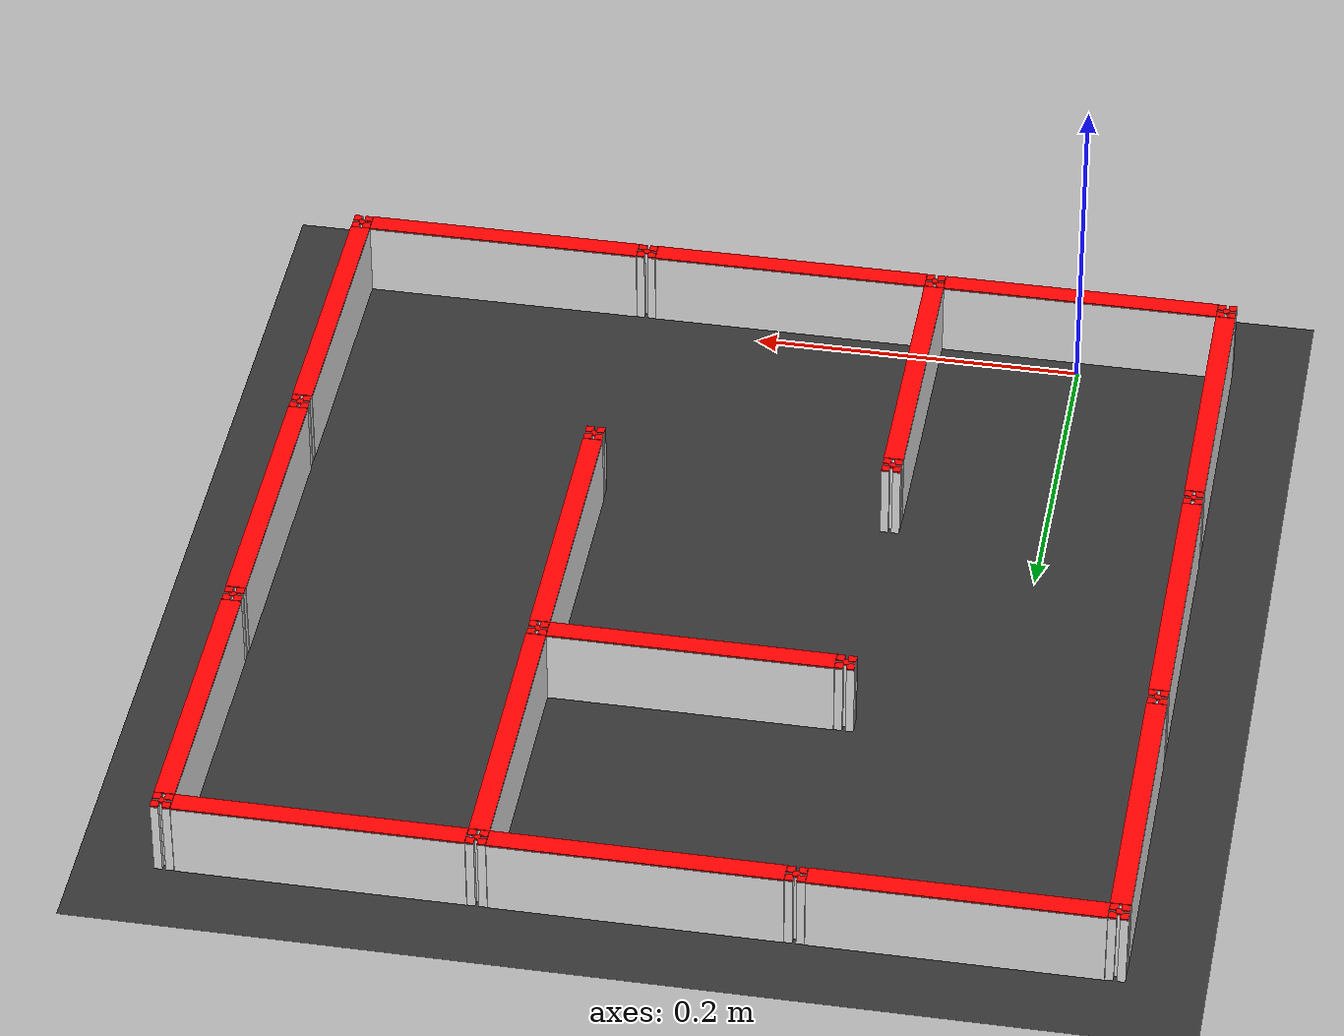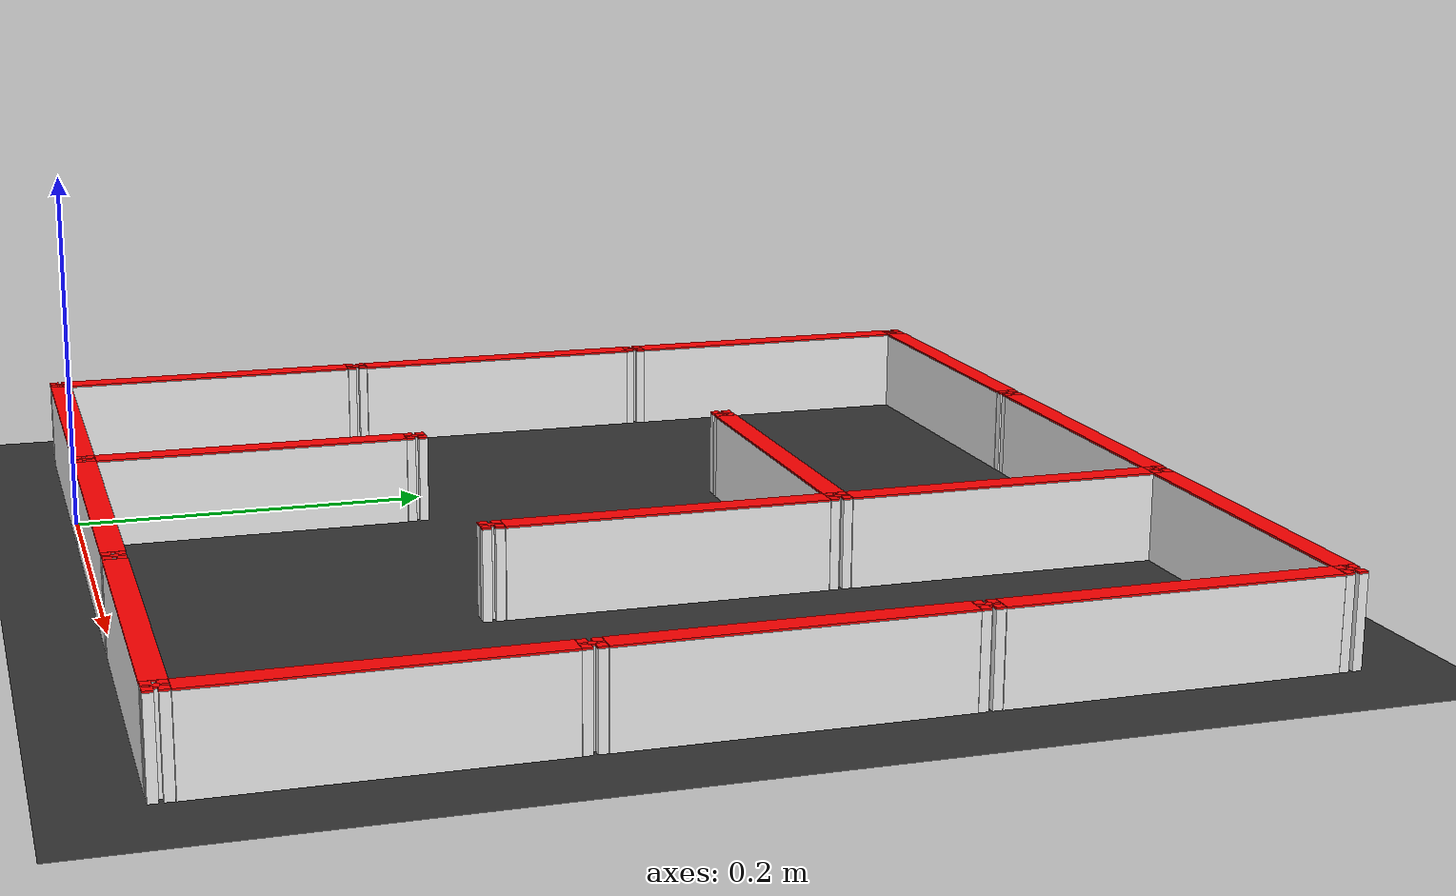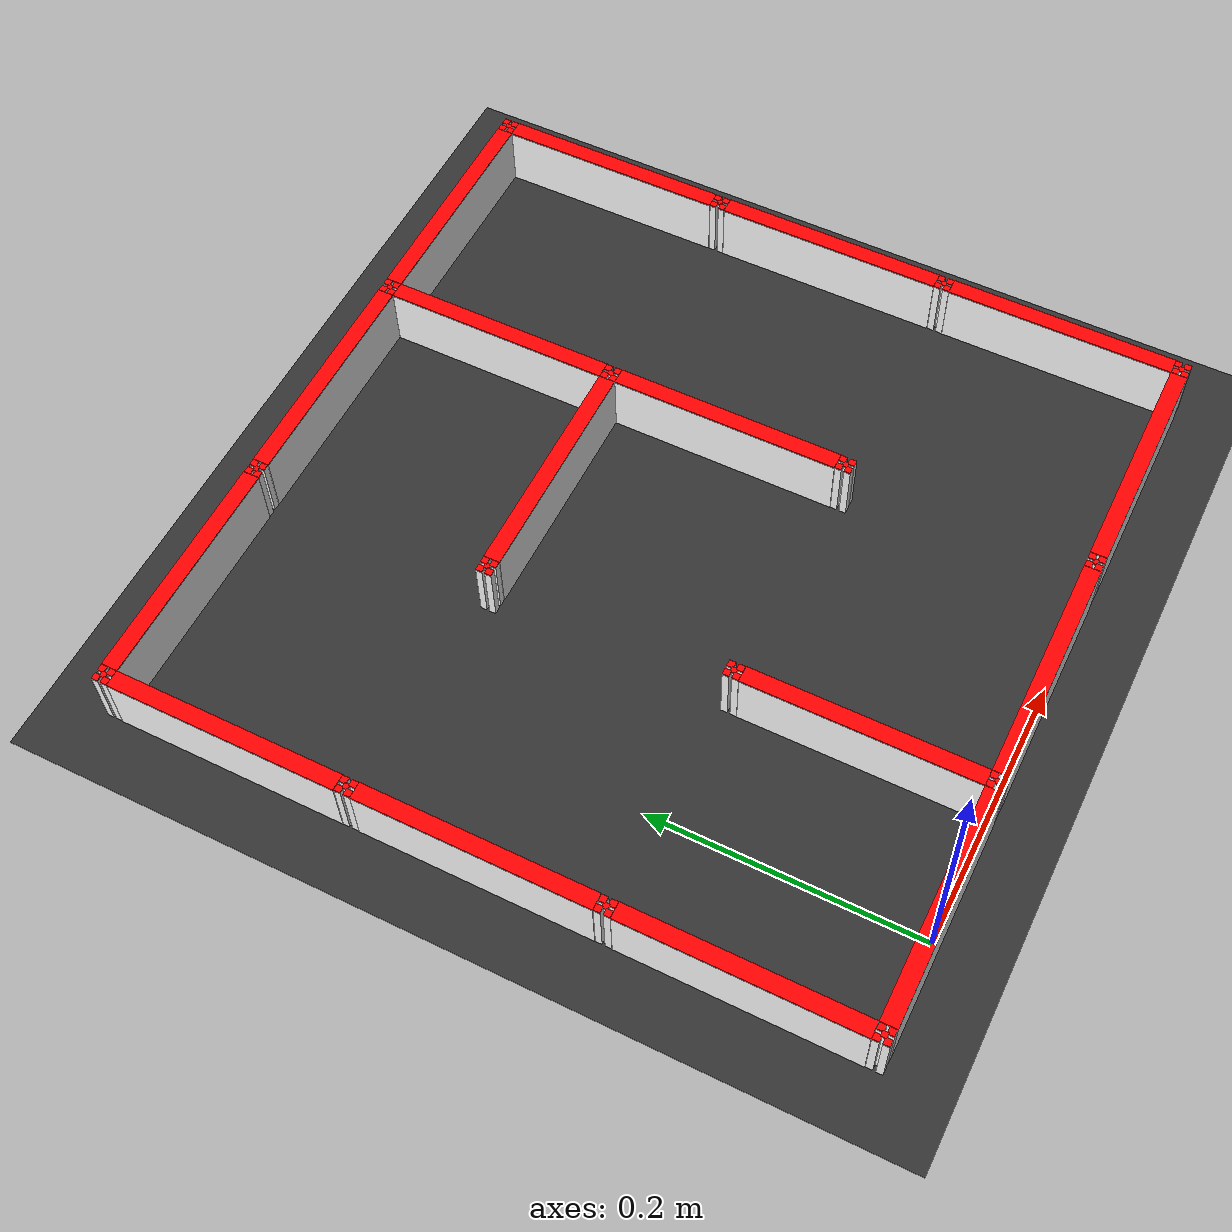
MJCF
<mujoco model="maze">

    <asset>
        <texture type="skybox" builtin="gradient" rgb1="0.3 0.5 0.7" rgb2="0 0 0" width="512" height="3072"/>
        <texture type="2d" name="groundplane" builtin="checker" mark="edge" rgb1="0.2 0.3 0.4" rgb2="0.1 0.2 0.3" markrgb="0.8 0.8 0.8" width="300" height="300"/>
        <material name="groundplane" texture="groundplane" texuniform="true" texrepeat="5 5" reflectance="0.2"/>
    </asset>

    <worldbody>
        <!--ベース板-->
        <body name="base_plate" pos="0.18 0.27 0.015">
            <geom type="plane" mass="0.1" size="0.321 0.321 0.006" rgba="0.2 0.2 0.2 1" friction="0.0 0.0 0.0"/>
        </body>
        <body name="wall1" pos="0 0 0.037"  euler="0 0 0">
            <body pos="0 0 -0.0005">
                <geom type="box" mass="0.1" size="0.084 0.006 0.0245" rgba="1 1 1 1"/>
            </body>
            <body pos="0 0 0.0245">
                <geom type="box" mass="0.001" size="0.084 0.006 0.0005" rgba="1 0 0 1"/>
            </body>
        </body>
        <body name="wall2" pos="0.18 0 0.037" euler="0 0 0">
            <body pos="0 0 -0.0005">
                <geom type="box" mass="0.1" size="0.084 0.006 0.0245" rgba="1 1 1 1"/>
            </body>
            <body pos="0 0 0.0245">
                <geom type="box" mass="0.001" size="0.084 0.006 0.0005" rgba="1 0 0 1"/>
            </body>
        </body>
        <body name="wall3" pos="0.36 0 0.037" euler="0 0 0">
            <body pos="0 0 -0.0005">
                <geom type="box" mass="0.1" size="0.084 0.006 0.0245" rgba="1 1 1 1"/>
            </body>
            <body pos="0 0 0.0245">
                <geom type="box" mass="0.001" size="0.084 0.006 0.0005" rgba="1 0 0 1"/>
            </body>
        </body>
        <body name="wall4" pos="0.45 0.09 0.037"  euler="0 0 90">
            <body pos="0 0 -0.0005">
                <geom type="box" mass="0.1" size="0.084 0.006 0.0245" rgba="1 1 1 1"/>
            </body>
            <body pos="0 0 0.0245">
                <geom type="box" mass="0.001" size="0.084 0.006 0.0005" rgba="1 0 0 1"/>
            </body>
        </body>
        <body name="wall5" pos="0.45 0.27 0.037" euler="0 0 90">
            <body pos="0 0 -0.0005">
                <geom type="box" mass="0.1" size="0.084 0.006 0.0245" rgba="1 1 1 1"/>
            </body>
            <body pos="0 0 0.0245">
                <geom type="box" mass="0.001" size="0.084 0.006 0.0005" rgba="1 0 0 1"/>
            </body>
        </body>
        <body name="wall6" pos="0.45 0.45 0.037" euler="0 0 90">
            <body pos="0 0 -0.0005">
                <geom type="box" mass="0.1" size="0.084 0.006 0.0245" rgba="1 1 1 1"/>
            </body>
            <body pos="0 0 0.0245">
                <geom type="box" mass="0.001" size="0.084 0.006 0.0005" rgba="1 0 0 1"/>
            </body>
        </body>
        <body name="wall7" pos="-0.090 0.09 0.037"  euler="0 0 90">
            <body pos="0 0 -0.0005">
                <geom type="box" mass="0.1" size="0.084 0.006 0.0245" rgba="1 1 1 1"/>
            </body>
            <body pos="0 0 0.0245">
                <geom type="box" mass="0.001" size="0.084 0.006 0.0005" rgba="1 0 0 1"/>
            </body>
        </body>
        <body name="wall8" pos="-0.090 0.27 0.037" euler="0 0 90">
            <body pos="0 0 -0.0005">
                <geom type="box" mass="0.1" size="0.084 0.006 0.0245" rgba="1 1 1 1"/>
            </body>
            <body pos="0 0 0.0245">
                <geom type="box" mass="0.001" size="0.084 0.006 0.0005" rgba="1 0 0 1"/>
            </body>
        </body>
        <body name="wall9" pos="-0.090 0.45 0.037" euler="0 0 90">
            <body pos="0 0 -0.0005">
                <geom type="box" mass="0.1" size="0.084 0.006 0.0245" rgba="1 1 1 1"/>
            </body>
            <body pos="0 0 0.0245">
                <geom type="box" mass="0.001" size="0.084 0.006 0.0005" rgba="1 0 0 1"/>
            </body>
        </body>
        <body name="wall10" pos="0 0.54 0.037"  euler="0 0 0">
            <body pos="0 0 -0.0005">
                <geom type="box" mass="0.1" size="0.084 0.006 0.0245" rgba="1 1 1 1"/>
            </body>
            <body pos="0 0 0.0245">
                <geom type="box" mass="0.001" size="0.084 0.006 0.0005" rgba="1 0 0 1"/>
            </body>
        </body>
        <body name="wall11" pos="0.18 0.54 0.037" euler="0 0 0">
            <body pos="0 0 -0.0005">
                <geom type="box" mass="0.1" size="0.084 0.006 0.0245" rgba="1 1 1 1"/>
            </body>
            <body pos="0 0 0.0245">
                <geom type="box" mass="0.001" size="0.084 0.006 0.0005" rgba="1 0 0 1"/>
            </body>
        </body>
        <body name="wall12" pos="0.36 0.54 0.037" euler="0 0 0">
            <body pos="0 0 -0.0005">
                <geom type="box" mass="0.1" size="0.084 0.006 0.0245" rgba="1 1 1 1"/>
            </body>
            <body pos="0 0 0.0245">
                <geom type="box" mass="0.001" size="0.084 0.006 0.0005" rgba="1 0 0 1"/>
            </body>
        </body>

        <body name="wall13" pos="0.09 0.09 0.037" euler="0 0 90">
            <body pos="0 0 -0.0005">
                <geom type="box" mass="0.1" size="0.084 0.006 0.0245" rgba="1 1 1 1"/>
            </body>
            <body pos="0 0 0.0245">
                <geom type="box" mass="0.001" size="0.084 0.006 0.0005" rgba="1 0 0 1"/>
            </body>
        </body>

        <body name="wall14" pos="0.27 0.45 0.037" euler="0 0 90">
            <body pos="0 0 -0.0005">
                <geom type="box" mass="0.1" size="0.084 0.006 0.0245" rgba="1 1 1 1"/>
            </body>
            <body pos="0 0 0.0245">
                <geom type="box" mass="0.001" size="0.084 0.006 0.0005" rgba="1 0 0 1"/>
            </body>
        </body>

        <body name="wall15" pos="0.18 0.36 0.037" euler="0 0 0">
            <body pos="0 0 -0.0005">
                <geom type="box" mass="0.1" size="0.084 0.006 0.0245" rgba="1 1 1 1"/>
            </body>
            <body pos="0 0 0.0245">
                <geom type="box" mass="0.001" size="0.084 0.006 0.0005" rgba="1 0 0 1"/>
            </body>
        </body>

        <body name="wall16" pos="0.27 0.27 0.037" euler="0 0 90">
            <body pos="0 0 -0.0005">
                <geom type="box" mass="0.1" size="0.084 0.006 0.0245" rgba="1 1 1 1"/>
            </body>
            <body pos="0 0 0.0245">
                <geom type="box" mass="0.001" size="0.084 0.006 0.0005" rgba="1 0 0 1"/>
            </body>
        </body>

        <body pos="-0.09 0 0.037">
            <body pos="0.003375 0.003375 -0.0005">
                <geom type="box" mass="0.01" size="0.002375 0.002375 0.0245" rgba="1 1 1 1"/>
            </body>
            <body pos="0.003375 -0.003375 -0.0005">
                <geom type="box" mass="0.01" size="0.002375 0.002375 0.0245" rgba="1 1 1 1"/>
            </body>
            <body pos="-0.003375 0.003375 -0.0005">
                <geom type="box" mass="0.01" size="0.002375 0.002375 0.0245" rgba="1 1 1 1"/>
            </body>
            <body pos="-0.003375 -0.003375 -0.0005">
                <geom type="box" mass="0.01" size="0.002375 0.002375 0.0245" rgba="1 1 1 1"/>
            </body>
            <body pos="0 0 -0.0005">
                <geom type="box" mass="0.01" size="0.002 0.002 0.0245" rgba="1 1 1 1"/>
            </body>
            <!--柱上赤蓋-->
            <body pos="0.003375 0.003375 0.0245">
                <geom type="box" mass="0.01" size="0.002375 0.002375 0.0005" rgba="1 0 0 1"/>
            </body>
            <body pos="0.003375 -0.003375 0.0245">
                <geom type="box" mass="0.01" size="0.002375 0.002375 0.0005" rgba="1 0 0 1"/>
            </body>
            <body pos="-0.003375 0.003375 0.0245">
                <geom type="box" mass="0.01" size="0.002375 0.002375 0.0005" rgba="1 0 0 1"/>
            </body>
            <body pos="-0.003375 -0.003375 0.0245">
                <geom type="box" mass="0.01" size="0.002375 0.002375 0.0005" rgba="1 0 0 1"/>
            </body>
            <body pos="0 0 0.0245">
                <geom type="box" mass="0.01" size="0.002 0.002 0.0005" rgba="1 0 0 1"/>
            </body>
        </body>
        <body pos="0.09 0 0.037">
            <body pos="0.003375 0.003375 -0.0005">
                <geom type="box" mass="0.01" size="0.002375 0.002375 0.0245" rgba="1 1 1 1"/>
            </body>
            <body pos="0.003375 -0.003375 -0.0005">
                <geom type="box" mass="0.01" size="0.002375 0.002375 0.0245" rgba="1 1 1 1"/>
            </body>
            <body pos="-0.003375 0.003375 -0.0005">
                <geom type="box" mass="0.01" size="0.002375 0.002375 0.0245" rgba="1 1 1 1"/>
            </body>
            <body pos="-0.003375 -0.003375 -0.0005">
                <geom type="box" mass="0.01" size="0.002375 0.002375 0.0245" rgba="1 1 1 1"/>
            </body>
            <body pos="0 0 -0.0005">
                <geom type="box" mass="0.01" size="0.002 0.002 0.0245" rgba="1 1 1 1"/>
            </body>
            <!--柱上赤蓋-->
            <body pos="0.003375 0.003375 0.0245">
                <geom type="box" mass="0.01" size="0.002375 0.002375 0.0005" rgba="1 0 0 1"/>
            </body>
            <body pos="0.003375 -0.003375 0.0245">
                <geom type="box" mass="0.01" size="0.002375 0.002375 0.0005" rgba="1 0 0 1"/>
            </body>
            <body pos="-0.003375 0.003375 0.0245">
                <geom type="box" mass="0.01" size="0.002375 0.002375 0.0005" rgba="1 0 0 1"/>
            </body>
            <body pos="-0.003375 -0.003375 0.0245">
                <geom type="box" mass="0.01" size="0.002375 0.002375 0.0005" rgba="1 0 0 1"/>
            </body>
            <body pos="0 0 0.0245">
                <geom type="box" mass="0.01" size="0.002 0.002 0.0005" rgba="1 0 0 1"/>
            </body>
        </body>
        <body pos="0.27 0 0.037">
            <body pos="0.003375 0.003375 -0.0005">
                <geom type="box" mass="0.01" size="0.002375 0.002375 0.0245" rgba="1 1 1 1"/>
            </body>
            <body pos="0.003375 -0.003375 -0.0005">
                <geom type="box" mass="0.01" size="0.002375 0.002375 0.0245" rgba="1 1 1 1"/>
            </body>
            <body pos="-0.003375 0.003375 -0.0005">
                <geom type="box" mass="0.01" size="0.002375 0.002375 0.0245" rgba="1 1 1 1"/>
            </body>
            <body pos="-0.003375 -0.003375 -0.0005">
                <geom type="box" mass="0.01" size="0.002375 0.002375 0.0245" rgba="1 1 1 1"/>
            </body>
            <body pos="0 0 -0.0005">
                <geom type="box" mass="0.01" size="0.002 0.002 0.0245" rgba="1 1 1 1"/>
            </body>
            <!--柱上赤蓋-->
            <body pos="0.003375 0.003375 0.0245">
                <geom type="box" mass="0.01" size="0.002375 0.002375 0.0005" rgba="1 0 0 1"/>
            </body>
            <body pos="0.003375 -0.003375 0.0245">
                <geom type="box" mass="0.01" size="0.002375 0.002375 0.0005" rgba="1 0 0 1"/>
            </body>
            <body pos="-0.003375 0.003375 0.0245">
                <geom type="box" mass="0.01" size="0.002375 0.002375 0.0005" rgba="1 0 0 1"/>
            </body>
            <body pos="-0.003375 -0.003375 0.0245">
                <geom type="box" mass="0.01" size="0.002375 0.002375 0.0005" rgba="1 0 0 1"/>
            </body>
            <body pos="0 0 0.0245">
                <geom type="box" mass="0.01" size="0.002 0.002 0.0005" rgba="1 0 0 1"/>
            </body>
        </body>
        <body pos="0.45 0 0.037">
            <body pos="0.003375 0.003375 -0.0005">
                <geom type="box" mass="0.01" size="0.002375 0.002375 0.0245" rgba="1 1 1 1"/>
            </body>
            <body pos="0.003375 -0.003375 -0.0005">
                <geom type="box" mass="0.01" size="0.002375 0.002375 0.0245" rgba="1 1 1 1"/>
            </body>
            <body pos="-0.003375 0.003375 -0.0005">
                <geom type="box" mass="0.01" size="0.002375 0.002375 0.0245" rgba="1 1 1 1"/>
            </body>
            <body pos="-0.003375 -0.003375 -0.0005">
                <geom type="box" mass="0.01" size="0.002375 0.002375 0.0245" rgba="1 1 1 1"/>
            </body>
            <body pos="0 0 -0.0005">
                <geom type="box" mass="0.01" size="0.002 0.002 0.0245" rgba="1 1 1 1"/>
            </body>
            <!--柱上赤蓋-->
            <body pos="0.003375 0.003375 0.0245">
                <geom type="box" mass="0.01" size="0.002375 0.002375 0.0005" rgba="1 0 0 1"/>
            </body>
            <body pos="0.003375 -0.003375 0.0245">
                <geom type="box" mass="0.01" size="0.002375 0.002375 0.0005" rgba="1 0 0 1"/>
            </body>
            <body pos="-0.003375 0.003375 0.0245">
                <geom type="box" mass="0.01" size="0.002375 0.002375 0.0005" rgba="1 0 0 1"/>
            </body>
            <body pos="-0.003375 -0.003375 0.0245">
                <geom type="box" mass="0.01" size="0.002375 0.002375 0.0005" rgba="1 0 0 1"/>
            </body>
            <body pos="0 0 0.0245">
                <geom type="box" mass="0.01" size="0.002 0.002 0.0005" rgba="1 0 0 1"/>
            </body>
        </body>

        <body pos="-0.09 0.18 0.037">
            <body pos="0.003375 0.003375 -0.0005">
                <geom type="box" mass="0.01" size="0.002375 0.002375 0.0245" rgba="1 1 1 1"/>
            </body>
            <body pos="0.003375 -0.003375 -0.0005">
                <geom type="box" mass="0.01" size="0.002375 0.002375 0.0245" rgba="1 1 1 1"/>
            </body>
            <body pos="-0.003375 0.003375 -0.0005">
                <geom type="box" mass="0.01" size="0.002375 0.002375 0.0245" rgba="1 1 1 1"/>
            </body>
            <body pos="-0.003375 -0.003375 -0.0005">
                <geom type="box" mass="0.01" size="0.002375 0.002375 0.0245" rgba="1 1 1 1"/>
            </body>
            <body pos="0 0 -0.0005">
                <geom type="box" mass="0.01" size="0.002 0.002 0.0245" rgba="1 1 1 1"/>
            </body>
            <!--柱上赤蓋-->
            <body pos="0.003375 0.003375 0.0245">
                <geom type="box" mass="0.01" size="0.002375 0.002375 0.0005" rgba="1 0 0 1"/>
            </body>
            <body pos="0.003375 -0.003375 0.0245">
                <geom type="box" mass="0.01" size="0.002375 0.002375 0.0005" rgba="1 0 0 1"/>
            </body>
            <body pos="-0.003375 0.003375 0.0245">
                <geom type="box" mass="0.01" size="0.002375 0.002375 0.0005" rgba="1 0 0 1"/>
            </body>
            <body pos="-0.003375 -0.003375 0.0245">
                <geom type="box" mass="0.01" size="0.002375 0.002375 0.0005" rgba="1 0 0 1"/>
            </body>
            <body pos="0 0 0.0245">
                <geom type="box" mass="0.01" size="0.002 0.002 0.0005" rgba="1 0 0 1"/>
            </body>
        </body>
        <body pos="0.09 0.18 0.037">
            <body pos="0.003375 0.003375 -0.0005">
                <geom type="box" mass="0.01" size="0.002375 0.002375 0.0245" rgba="1 1 1 1"/>
            </body>
            <body pos="0.003375 -0.003375 -0.0005">
                <geom type="box" mass="0.01" size="0.002375 0.002375 0.0245" rgba="1 1 1 1"/>
            </body>
            <body pos="-0.003375 0.003375 -0.0005">
                <geom type="box" mass="0.01" size="0.002375 0.002375 0.0245" rgba="1 1 1 1"/>
            </body>
            <body pos="-0.003375 -0.003375 -0.0005">
                <geom type="box" mass="0.01" size="0.002375 0.002375 0.0245" rgba="1 1 1 1"/>
            </body>
            <body pos="0 0 -0.0005">
                <geom type="box" mass="0.01" size="0.002 0.002 0.0245" rgba="1 1 1 1"/>
            </body>
            <!--柱上赤蓋-->
            <body pos="0.003375 0.003375 0.0245">
                <geom type="box" mass="0.01" size="0.002375 0.002375 0.0005" rgba="1 0 0 1"/>
            </body>
            <body pos="0.003375 -0.003375 0.0245">
                <geom type="box" mass="0.01" size="0.002375 0.002375 0.0005" rgba="1 0 0 1"/>
            </body>
            <body pos="-0.003375 0.003375 0.0245">
                <geom type="box" mass="0.01" size="0.002375 0.002375 0.0005" rgba="1 0 0 1"/>
            </body>
            <body pos="-0.003375 -0.003375 0.0245">
                <geom type="box" mass="0.01" size="0.002375 0.002375 0.0005" rgba="1 0 0 1"/>
            </body>
            <body pos="0 0 0.0245">
                <geom type="box" mass="0.01" size="0.002 0.002 0.0005" rgba="1 0 0 1"/>
            </body>
        </body>
        <body pos="0.27 0.18 0.037">
            <body pos="0.003375 0.003375 -0.0005">
                <geom type="box" mass="0.01" size="0.002375 0.002375 0.0245" rgba="1 1 1 1"/>
            </body>
            <body pos="0.003375 -0.003375 -0.0005">
                <geom type="box" mass="0.01" size="0.002375 0.002375 0.0245" rgba="1 1 1 1"/>
            </body>
            <body pos="-0.003375 0.003375 -0.0005">
                <geom type="box" mass="0.01" size="0.002375 0.002375 0.0245" rgba="1 1 1 1"/>
            </body>
            <body pos="-0.003375 -0.003375 -0.0005">
                <geom type="box" mass="0.01" size="0.002375 0.002375 0.0245" rgba="1 1 1 1"/>
            </body>
            <body pos="0 0 -0.0005">
                <geom type="box" mass="0.01" size="0.002 0.002 0.0245" rgba="1 1 1 1"/>
            </body>
            <!--柱上赤蓋-->
            <body pos="0.003375 0.003375 0.0245">
                <geom type="box" mass="0.01" size="0.002375 0.002375 0.0005" rgba="1 0 0 1"/>
            </body>
            <body pos="0.003375 -0.003375 0.0245">
                <geom type="box" mass="0.01" size="0.002375 0.002375 0.0005" rgba="1 0 0 1"/>
            </body>
            <body pos="-0.003375 0.003375 0.0245">
                <geom type="box" mass="0.01" size="0.002375 0.002375 0.0005" rgba="1 0 0 1"/>
            </body>
            <body pos="-0.003375 -0.003375 0.0245">
                <geom type="box" mass="0.01" size="0.002375 0.002375 0.0005" rgba="1 0 0 1"/>
            </body>
            <body pos="0 0 0.0245">
                <geom type="box" mass="0.01" size="0.002 0.002 0.0005" rgba="1 0 0 1"/>
            </body>
        </body>
        <body pos="0.45 0.18 0.037">
            <body pos="0.003375 0.003375 -0.0005">
                <geom type="box" mass="0.01" size="0.002375 0.002375 0.0245" rgba="1 1 1 1"/>
            </body>
            <body pos="0.003375 -0.003375 -0.0005">
                <geom type="box" mass="0.01" size="0.002375 0.002375 0.0245" rgba="1 1 1 1"/>
            </body>
            <body pos="-0.003375 0.003375 -0.0005">
                <geom type="box" mass="0.01" size="0.002375 0.002375 0.0245" rgba="1 1 1 1"/>
            </body>
            <body pos="-0.003375 -0.003375 -0.0005">
                <geom type="box" mass="0.01" size="0.002375 0.002375 0.0245" rgba="1 1 1 1"/>
            </body>
            <body pos="0 0 -0.0005">
                <geom type="box" mass="0.01" size="0.002 0.002 0.0245" rgba="1 1 1 1"/>
            </body>
            <!--柱上赤蓋-->
            <body pos="0.003375 0.003375 0.0245">
                <geom type="box" mass="0.01" size="0.002375 0.002375 0.0005" rgba="1 0 0 1"/>
            </body>
            <body pos="0.003375 -0.003375 0.0245">
                <geom type="box" mass="0.01" size="0.002375 0.002375 0.0005" rgba="1 0 0 1"/>
            </body>
            <body pos="-0.003375 0.003375 0.0245">
                <geom type="box" mass="0.01" size="0.002375 0.002375 0.0005" rgba="1 0 0 1"/>
            </body>
            <body pos="-0.003375 -0.003375 0.0245">
                <geom type="box" mass="0.01" size="0.002375 0.002375 0.0005" rgba="1 0 0 1"/>
            </body>
            <body pos="0 0 0.0245">
                <geom type="box" mass="0.01" size="0.002 0.002 0.0005" rgba="1 0 0 1"/>
            </body>
        </body>

        <body pos="-0.09 0.36 0.037">
            <body pos="0.003375 0.003375 -0.0005">
                <geom type="box" mass="0.01" size="0.002375 0.002375 0.0245" rgba="1 1 1 1"/>
            </body>
            <body pos="0.003375 -0.003375 -0.0005">
                <geom type="box" mass="0.01" size="0.002375 0.002375 0.0245" rgba="1 1 1 1"/>
            </body>
            <body pos="-0.003375 0.003375 -0.0005">
                <geom type="box" mass="0.01" size="0.002375 0.002375 0.0245" rgba="1 1 1 1"/>
            </body>
            <body pos="-0.003375 -0.003375 -0.0005">
                <geom type="box" mass="0.01" size="0.002375 0.002375 0.0245" rgba="1 1 1 1"/>
            </body>
            <body pos="0 0 -0.0005">
                <geom type="box" mass="0.01" size="0.002 0.002 0.0245" rgba="1 1 1 1"/>
            </body>
            <!--柱上赤蓋-->
            <body pos="0.003375 0.003375 0.0245">
                <geom type="box" mass="0.01" size="0.002375 0.002375 0.0005" rgba="1 0 0 1"/>
            </body>
            <body pos="0.003375 -0.003375 0.0245">
                <geom type="box" mass="0.01" size="0.002375 0.002375 0.0005" rgba="1 0 0 1"/>
            </body>
            <body pos="-0.003375 0.003375 0.0245">
                <geom type="box" mass="0.01" size="0.002375 0.002375 0.0005" rgba="1 0 0 1"/>
            </body>
            <body pos="-0.003375 -0.003375 0.0245">
                <geom type="box" mass="0.01" size="0.002375 0.002375 0.0005" rgba="1 0 0 1"/>
            </body>
            <body pos="0 0 0.0245">
                <geom type="box" mass="0.01" size="0.002 0.002 0.0005" rgba="1 0 0 1"/>
            </body>
        </body>
        <body pos="0.09 0.36 0.037">
            <body pos="0.003375 0.003375 -0.0005">
                <geom type="box" mass="0.01" size="0.002375 0.002375 0.0245" rgba="1 1 1 1"/>
            </body>
            <body pos="0.003375 -0.003375 -0.0005">
                <geom type="box" mass="0.01" size="0.002375 0.002375 0.0245" rgba="1 1 1 1"/>
            </body>
            <body pos="-0.003375 0.003375 -0.0005">
                <geom type="box" mass="0.01" size="0.002375 0.002375 0.0245" rgba="1 1 1 1"/>
            </body>
            <body pos="-0.003375 -0.003375 -0.0005">
                <geom type="box" mass="0.01" size="0.002375 0.002375 0.0245" rgba="1 1 1 1"/>
            </body>
            <body pos="0 0 -0.0005">
                <geom type="box" mass="0.01" size="0.002 0.002 0.0245" rgba="1 1 1 1"/>
            </body>
            <!--柱上赤蓋-->
            <body pos="0.003375 0.003375 0.0245">
                <geom type="box" mass="0.01" size="0.002375 0.002375 0.0005" rgba="1 0 0 1"/>
            </body>
            <body pos="0.003375 -0.003375 0.0245">
                <geom type="box" mass="0.01" size="0.002375 0.002375 0.0005" rgba="1 0 0 1"/>
            </body>
            <body pos="-0.003375 0.003375 0.0245">
                <geom type="box" mass="0.01" size="0.002375 0.002375 0.0005" rgba="1 0 0 1"/>
            </body>
            <body pos="-0.003375 -0.003375 0.0245">
                <geom type="box" mass="0.01" size="0.002375 0.002375 0.0005" rgba="1 0 0 1"/>
            </body>
            <body pos="0 0 0.0245">
                <geom type="box" mass="0.01" size="0.002 0.002 0.0005" rgba="1 0 0 1"/>
            </body>
        </body>
        <body pos="0.27 0.36 0.037">
            <body pos="0.003375 0.003375 -0.0005">
                <geom type="box" mass="0.01" size="0.002375 0.002375 0.0245" rgba="1 1 1 1"/>
            </body>
            <body pos="0.003375 -0.003375 -0.0005">
                <geom type="box" mass="0.01" size="0.002375 0.002375 0.0245" rgba="1 1 1 1"/>
            </body>
            <body pos="-0.003375 0.003375 -0.0005">
                <geom type="box" mass="0.01" size="0.002375 0.002375 0.0245" rgba="1 1 1 1"/>
            </body>
            <body pos="-0.003375 -0.003375 -0.0005">
                <geom type="box" mass="0.01" size="0.002375 0.002375 0.0245" rgba="1 1 1 1"/>
            </body>
            <body pos="0 0 -0.0005">
                <geom type="box" mass="0.01" size="0.002 0.002 0.0245" rgba="1 1 1 1"/>
            </body>
            <!--柱上赤蓋-->
            <body pos="0.003375 0.003375 0.0245">
                <geom type="box" mass="0.01" size="0.002375 0.002375 0.0005" rgba="1 0 0 1"/>
            </body>
            <body pos="0.003375 -0.003375 0.0245">
                <geom type="box" mass="0.01" size="0.002375 0.002375 0.0005" rgba="1 0 0 1"/>
            </body>
            <body pos="-0.003375 0.003375 0.0245">
                <geom type="box" mass="0.01" size="0.002375 0.002375 0.0005" rgba="1 0 0 1"/>
            </body>
            <body pos="-0.003375 -0.003375 0.0245">
                <geom type="box" mass="0.01" size="0.002375 0.002375 0.0005" rgba="1 0 0 1"/>
            </body>
            <body pos="0 0 0.0245">
                <geom type="box" mass="0.01" size="0.002 0.002 0.0005" rgba="1 0 0 1"/>
            </body>
        </body>
        <body pos="0.45 0.36 0.037">
            <body pos="0.003375 0.003375 -0.0005">
                <geom type="box" mass="0.01" size="0.002375 0.002375 0.0245" rgba="1 1 1 1"/>
            </body>
            <body pos="0.003375 -0.003375 -0.0005">
                <geom type="box" mass="0.01" size="0.002375 0.002375 0.0245" rgba="1 1 1 1"/>
            </body>
            <body pos="-0.003375 0.003375 -0.0005">
                <geom type="box" mass="0.01" size="0.002375 0.002375 0.0245" rgba="1 1 1 1"/>
            </body>
            <body pos="-0.003375 -0.003375 -0.0005">
                <geom type="box" mass="0.01" size="0.002375 0.002375 0.0245" rgba="1 1 1 1"/>
            </body>
            <body pos="0 0 -0.0005">
                <geom type="box" mass="0.01" size="0.002 0.002 0.0245" rgba="1 1 1 1"/>
            </body>
            <!--柱上赤蓋-->
            <body pos="0.003375 0.003375 0.0245">
                <geom type="box" mass="0.01" size="0.002375 0.002375 0.0005" rgba="1 0 0 1"/>
            </body>
            <body pos="0.003375 -0.003375 0.0245">
                <geom type="box" mass="0.01" size="0.002375 0.002375 0.0005" rgba="1 0 0 1"/>
            </body>
            <body pos="-0.003375 0.003375 0.0245">
                <geom type="box" mass="0.01" size="0.002375 0.002375 0.0005" rgba="1 0 0 1"/>
            </body>
            <body pos="-0.003375 -0.003375 0.0245">
                <geom type="box" mass="0.01" size="0.002375 0.002375 0.0005" rgba="1 0 0 1"/>
            </body>
            <body pos="0 0 0.0245">
                <geom type="box" mass="0.01" size="0.002 0.002 0.0005" rgba="1 0 0 1"/>
            </body>
        </body>

        <body pos="-0.09 0.54 0.037">
            <body pos="0.003375 0.003375 -0.0005">
                <geom type="box" mass="0.01" size="0.002375 0.002375 0.0245" rgba="1 1 1 1"/>
            </body>
            <body pos="0.003375 -0.003375 -0.0005">
                <geom type="box" mass="0.01" size="0.002375 0.002375 0.0245" rgba="1 1 1 1"/>
            </body>
            <body pos="-0.003375 0.003375 -0.0005">
                <geom type="box" mass="0.01" size="0.002375 0.002375 0.0245" rgba="1 1 1 1"/>
            </body>
            <body pos="-0.003375 -0.003375 -0.0005">
                <geom type="box" mass="0.01" size="0.002375 0.002375 0.0245" rgba="1 1 1 1"/>
            </body>
            <body pos="0 0 -0.0005">
                <geom type="box" mass="0.01" size="0.002 0.002 0.0245" rgba="1 1 1 1"/>
            </body>
            <!--柱上赤蓋-->
            <body pos="0.003375 0.003375 0.0245">
                <geom type="box" mass="0.01" size="0.002375 0.002375 0.0005" rgba="1 0 0 1"/>
            </body>
            <body pos="0.003375 -0.003375 0.0245">
                <geom type="box" mass="0.01" size="0.002375 0.002375 0.0005" rgba="1 0 0 1"/>
            </body>
            <body pos="-0.003375 0.003375 0.0245">
                <geom type="box" mass="0.01" size="0.002375 0.002375 0.0005" rgba="1 0 0 1"/>
            </body>
            <body pos="-0.003375 -0.003375 0.0245">
                <geom type="box" mass="0.01" size="0.002375 0.002375 0.0005" rgba="1 0 0 1"/>
            </body>
            <body pos="0 0 0.0245">
                <geom type="box" mass="0.01" size="0.002 0.002 0.0005" rgba="1 0 0 1"/>
            </body>
        </body>
        <body pos="0.09 0.54 0.037">
            <body pos="0.003375 0.003375 -0.0005">
                <geom type="box" mass="0.01" size="0.002375 0.002375 0.0245" rgba="1 1 1 1"/>
            </body>
            <body pos="0.003375 -0.003375 -0.0005">
                <geom type="box" mass="0.01" size="0.002375 0.002375 0.0245" rgba="1 1 1 1"/>
            </body>
            <body pos="-0.003375 0.003375 -0.0005">
                <geom type="box" mass="0.01" size="0.002375 0.002375 0.0245" rgba="1 1 1 1"/>
            </body>
            <body pos="-0.003375 -0.003375 -0.0005">
                <geom type="box" mass="0.01" size="0.002375 0.002375 0.0245" rgba="1 1 1 1"/>
            </body>
            <body pos="0 0 -0.0005">
                <geom type="box" mass="0.01" size="0.002 0.002 0.0245" rgba="1 1 1 1"/>
            </body>
            <!--柱上赤蓋-->
            <body pos="0.003375 0.003375 0.0245">
                <geom type="box" mass="0.01" size="0.002375 0.002375 0.0005" rgba="1 0 0 1"/>
            </body>
            <body pos="0.003375 -0.003375 0.0245">
                <geom type="box" mass="0.01" size="0.002375 0.002375 0.0005" rgba="1 0 0 1"/>
            </body>
            <body pos="-0.003375 0.003375 0.0245">
                <geom type="box" mass="0.01" size="0.002375 0.002375 0.0005" rgba="1 0 0 1"/>
            </body>
            <body pos="-0.003375 -0.003375 0.0245">
                <geom type="box" mass="0.01" size="0.002375 0.002375 0.0005" rgba="1 0 0 1"/>
            </body>
            <body pos="0 0 0.0245">
                <geom type="box" mass="0.01" size="0.002 0.002 0.0005" rgba="1 0 0 1"/>
            </body>
        </body>
        <body pos="0.27 0.54 0.037">
            <body pos="0.003375 0.003375 -0.0005">
                <geom type="box" mass="0.01" size="0.002375 0.002375 0.0245" rgba="1 1 1 1"/>
            </body>
            <body pos="0.003375 -0.003375 -0.0005">
                <geom type="box" mass="0.01" size="0.002375 0.002375 0.0245" rgba="1 1 1 1"/>
            </body>
            <body pos="-0.003375 0.003375 -0.0005">
                <geom type="box" mass="0.01" size="0.002375 0.002375 0.0245" rgba="1 1 1 1"/>
            </body>
            <body pos="-0.003375 -0.003375 -0.0005">
                <geom type="box" mass="0.01" size="0.002375 0.002375 0.0245" rgba="1 1 1 1"/>
            </body>
            <body pos="0 0 -0.0005">
                <geom type="box" mass="0.01" size="0.002 0.002 0.0245" rgba="1 1 1 1"/>
            </body>
            <!--柱上赤蓋-->
            <body pos="0.003375 0.003375 0.0245">
                <geom type="box" mass="0.01" size="0.002375 0.002375 0.0005" rgba="1 0 0 1"/>
            </body>
            <body pos="0.003375 -0.003375 0.0245">
                <geom type="box" mass="0.01" size="0.002375 0.002375 0.0005" rgba="1 0 0 1"/>
            </body>
            <body pos="-0.003375 0.003375 0.0245">
                <geom type="box" mass="0.01" size="0.002375 0.002375 0.0005" rgba="1 0 0 1"/>
            </body>
            <body pos="-0.003375 -0.003375 0.0245">
                <geom type="box" mass="0.01" size="0.002375 0.002375 0.0005" rgba="1 0 0 1"/>
            </body>
            <body pos="0 0 0.0245">
                <geom type="box" mass="0.01" size="0.002 0.002 0.0005" rgba="1 0 0 1"/>
            </body>
        </body>
        <body pos="0.45 0.54 0.037">
            <body pos="0.003375 0.003375 -0.0005">
                <geom type="box" mass="0.01" size="0.002375 0.002375 0.0245" rgba="1 1 1 1"/>
            </body>
            <body pos="0.003375 -0.003375 -0.0005">
                <geom type="box" mass="0.01" size="0.002375 0.002375 0.0245" rgba="1 1 1 1"/>
            </body>
            <body pos="-0.003375 0.003375 -0.0005">
                <geom type="box" mass="0.01" size="0.002375 0.002375 0.0245" rgba="1 1 1 1"/>
            </body>
            <body pos="-0.003375 -0.003375 -0.0005">
                <geom type="box" mass="0.01" size="0.002375 0.002375 0.0245" rgba="1 1 1 1"/>
            </body>
            <body pos="0 0 -0.0005">
                <geom type="box" mass="0.01" size="0.002 0.002 0.0245" rgba="1 1 1 1"/>
            </body>
            <!--柱上赤蓋-->
            <body pos="0.003375 0.003375 0.0245">
                <geom type="box" mass="0.01" size="0.002375 0.002375 0.0005" rgba="1 0 0 1"/>
            </body>
            <body pos="0.003375 -0.003375 0.0245">
                <geom type="box" mass="0.01" size="0.002375 0.002375 0.0005" rgba="1 0 0 1"/>
            </body>
            <body pos="-0.003375 0.003375 0.0245">
                <geom type="box" mass="0.01" size="0.002375 0.002375 0.0005" rgba="1 0 0 1"/>
            </body>
            <body pos="-0.003375 -0.003375 0.0245">
                <geom type="box" mass="0.01" size="0.002375 0.002375 0.0005" rgba="1 0 0 1"/>
            </body>
            <body pos="0 0 0.0245">
                <geom type="box" mass="0.01" size="0.002 0.002 0.0005" rgba="1 0 0 1"/>
            </body>
        </body>
    </worldbody>
</mujoco>
